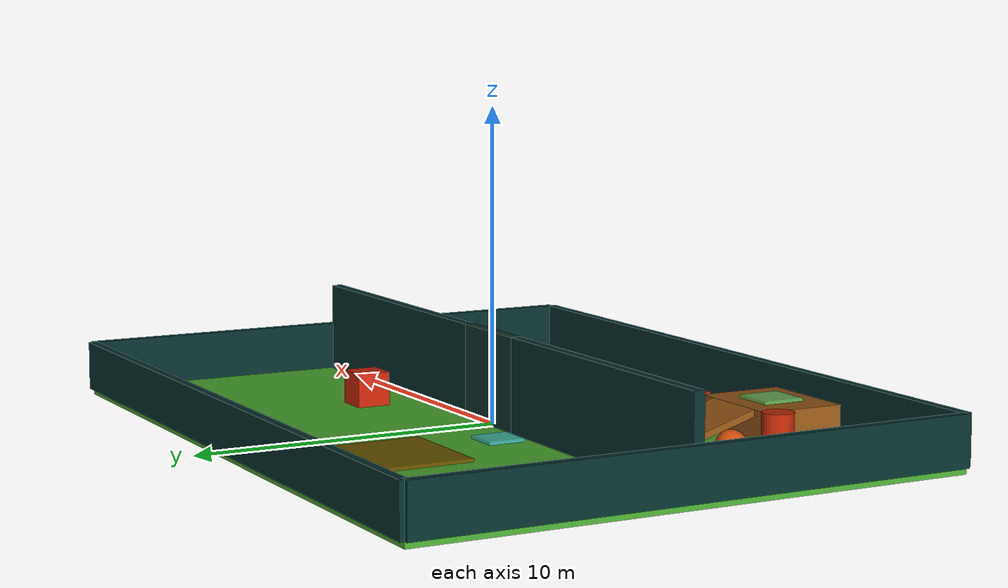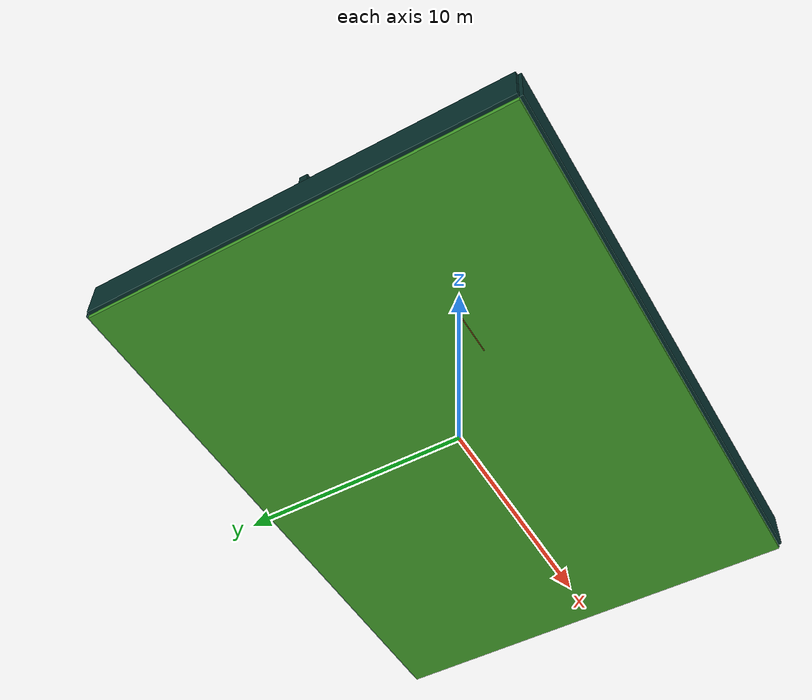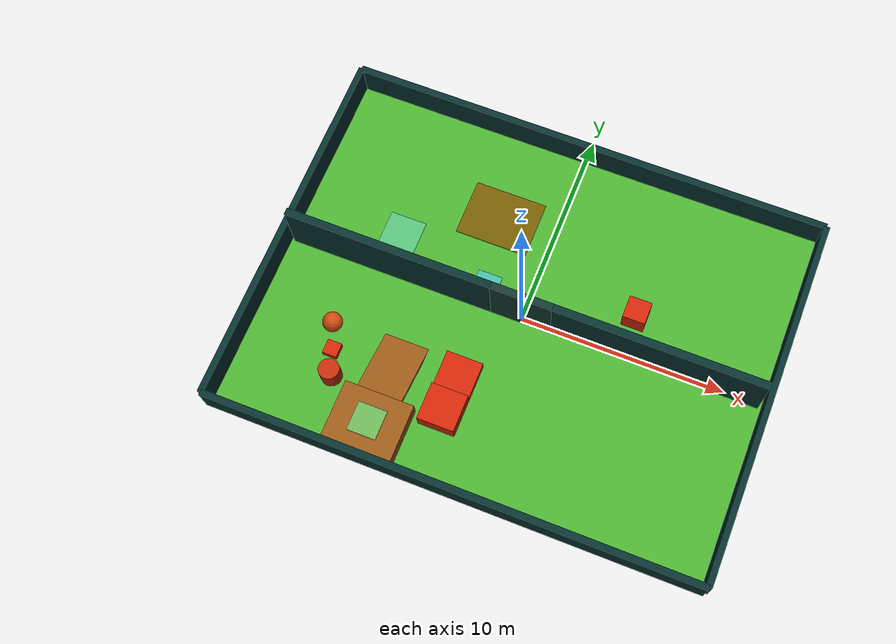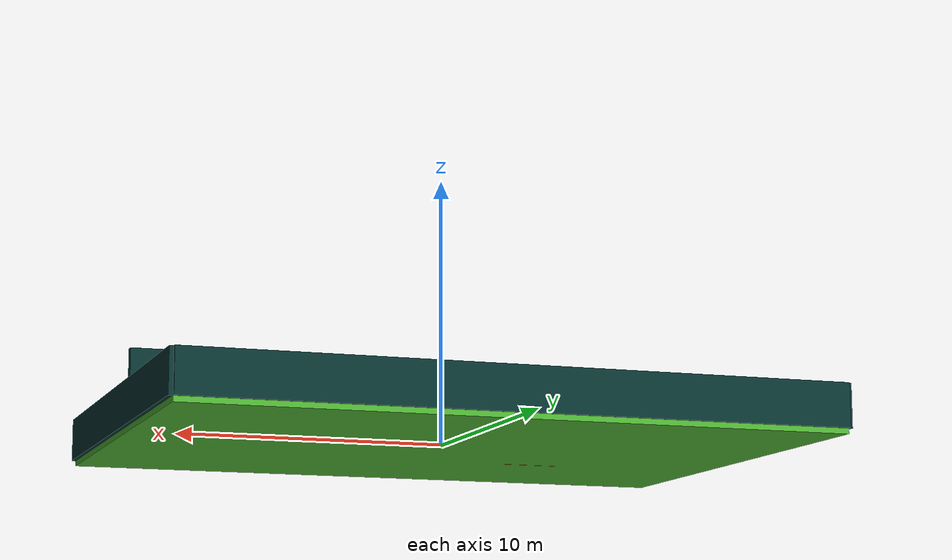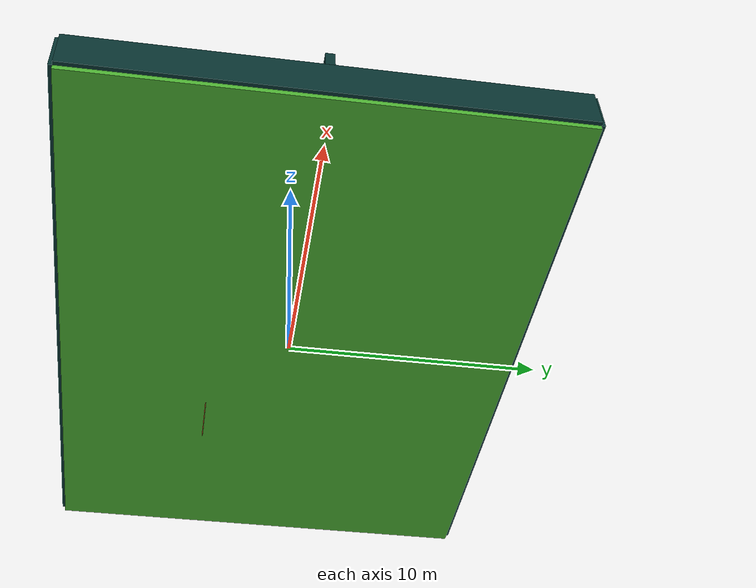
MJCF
<mujoco model="Courtyard_Relay">
  <compiler angle="radian" coordinate="local" autolimits="true" />
  <option timestep="0.01" gravity="0 0 -9.81" integrator="RK4" />
  <visual>
    <global offwidth="1280" offheight="820" />
    <quality shadowsize="4096" offsamples="4" />
    <headlight diffuse="0.45 0.48 0.38" ambient="0.18 0.16 0.12" specular="0.24 0.22 0.18" />
    <rgba haze="0.48 0.67 0.82 1" />
  </visual>
  <asset>
    <texture name="retro_adventure_sky" type="skybox" builtin="gradient" rgb1="0.55 0.78 1" rgb2="0.95 0.98 0.72" width="512" height="512" />
    <texture name="retro_adventure_grass" type="2d" builtin="checker" rgb1="0.62 0.86 0.5" rgb2="0.43 0.73 0.38" width="16" height="16" />
    <texture name="retro_adventure_wall" type="2d" builtin="checker" rgb1="0.2 0.5 0.48" rgb2="0.11 0.32 0.34" width="12" height="12" />
    <texture name="retro_adventure_path" type="2d" builtin="checker" rgb1="0.86 0.68 0.38" rgb2="0.65 0.46 0.24" width="10" height="10" />
    <texture name="retro_adventure_warm" type="2d" builtin="checker" rgb1="0.95 0.5 0.2" rgb2="0.74 0.24 0.12" width="8" height="8" />
    <texture name="retro_adventure_player" type="2d" builtin="checker" rgb1="0.18 0.48 1" rgb2="0.05 0.18 0.68" width="8" height="8" />
    <texture name="retro_adventure_hazard" type="2d" builtin="checker" rgb1="1 0.72 0.05" rgb2="0.04 0.05 0.06" width="16" height="16" />
    <material name="ground" rgba="0.545098 0.839216 0.423529 1" texture="retro_adventure_grass" texrepeat="4 3" texuniform="true" reflectance="0.12" specular="0.18" shininess="0.25" />
    <material name="wall" rgba="0.156863 0.454902 0.435294 1" texture="retro_adventure_wall" texrepeat="4 1" texuniform="true" reflectance="0.08" specular="0.18" shininess="0.2" />
    <material name="platform" rgba="0.776471 0.592157 0.298039 1" texture="retro_adventure_path" texrepeat="2 2" texuniform="true" reflectance="0.1" specular="0.22" shininess="0.35" />
    <material name="ramp" rgba="0.776471 0.592157 0.298039 1" texture="retro_adventure_path" texrepeat="2 1" texuniform="true" reflectance="0.1" specular="0.2" shininess="0.3" />
    <material name="pushable_box" rgba="0.937255 0.392157 0.188235 1" texture="retro_adventure_warm" texrepeat="1 1" texuniform="true" reflectance="0.08" specular="0.28" shininess="0.45" />
    <material name="ball" rgba="0.941176 0.784314 0.290196 1" texture="retro_adventure_warm" texrepeat="1 1" texuniform="true" reflectance="0.1" specular="0.35" shininess="0.5" />
    <material name="cylinder" rgba="0.87451 0.439216 0.188235 1" texture="retro_adventure_warm" texrepeat="1 1" texuniform="true" reflectance="0.08" specular="0.24" shininess="0.35" />
    <material name="agent" rgba="0.176471 0.45098 1 1" texture="retro_adventure_player" texrepeat="1 1" texuniform="true" reflectance="0.1" specular="0.4" shininess="0.6" />
    <material name="goal" rgba="0.341176 0.94902 0.529412 0.6" reflectance="0.03" specular="0.15" shininess="0.25" emission="0.12" />
    <material name="target_region" rgba="0.439216 0.839216 0.909804 0.4" reflectance="0.02" specular="0.16" shininess="0.3" emission="0.08" />
    <material name="hazard" rgba="1 0.819608 0.231373 0.8" texture="retro_adventure_hazard" texrepeat="6 4" texuniform="true" reflectance="0.03" specular="0.18" shininess="0.35" emission="0.1" />
    <material name="floor_switch" rgba="0.286275 0.776471 0.898039 0.666667" reflectance="0.05" specular="0.3" shininess="0.55" emission="0.2" />
    <material name="gate" rgba="0.45098 0.501961 0.435294 1" texture="retro_adventure_wall" texrepeat="2 1" texuniform="true" reflectance="0.08" specular="0.22" shininess="0.3" />
  </asset>
  <worldbody>
    <light name="key_light" pos="-4 -7 10" dir="0.35 0.45 -1" diffuse="1 0.9 0.68" ambient="0.24 0.2 0.15" specular="0.32 0.28 0.18" directional="true" />
    <light name="fill_light" pos="-5 5 5" diffuse="0.38 0.55 0.75" ambient="0.1 0.12 0.14" specular="0.08 0.1 0.12" />
    <light name="rim_light" pos="5 -4 6" diffuse="0.7 0.58 0.35" ambient="0.06 0.05 0.03" specular="0.16 0.14 0.08" />
    <camera name="overview" pos="0 -22.8 9" xyaxes="1 0 0 0 0.367167 0.930155" fovy="45" />
    <camera name="agent" pos="-3.279 2.38 2.75" xyaxes="0.857493 -0.514496 0 0.18162 0.302701 0.935621" fovy="50" />
    <camera name="goal" pos="-1.61 -12.38 3.7" xyaxes="0.857493 0.514496 0 -0.18162 0.302701 0.935621" fovy="50" />
    <geom name="ground" material="ground" type="box" pos="0 0 -0.1" size="12 9 0.1" euler="0 0 0" />
    <geom name="north_boundary" material="wall" type="box" pos="0 9 0.8" size="12 0.15 0.8" euler="0 0 0" />
    <geom name="south_boundary" material="wall" type="box" pos="0 -9 0.8" size="12 0.15 0.8" euler="0 0 0" />
    <geom name="west_boundary" material="wall" type="box" pos="-12 0 0.8" size="0.15 9 0.8" euler="0 0 0" />
    <geom name="east_boundary" material="wall" type="box" pos="12 0 0.8" size="0.15 9 0.8" euler="0 0 0" />
    <body name="blue_robot" pos="-0.279 7.38 0.55" euler="0 0 0">
      <freejoint name="blue_robot_freejoint" />
      <geom name="blue_robot" material="agent" type="cylinder" pos="0 0 0" size="0.35 0.55" mass="1.5" group="5" />
    </body>
    <geom name="charging_goal" material="goal" type="box" pos="-4.61 -7.38 0.95" size="0.7 0.7 0.05" euler="0 0 0" contype="0" conaffinity="0" />
    <geom name="mid_wall_west" material="wall" type="box" pos="-6.6 0 1.5" size="5.1 0.175 1.5" euler="0 0 0" />
    <geom name="mid_wall_east" material="wall" type="box" pos="6.6 0 1.5" size="5.1 0.175 1.5" euler="0 0 0" />
    <body name="center_gate" pos="0 0 1.5" euler="0 0 0" gravcomp="1">
      <joint name="center_gate_slide" type="slide" axis="0 0 1" range="0 1.5" damping="12" />
      <geom name="center_gate" material="gate" type="box" pos="0 0 0" size="1.5 0.175 1.5" mass="8" />
    </body>
    <geom name="gate_switch" material="floor_switch" type="box" pos="-2.2 1 0.05" size="0.6 0.6 0.05" euler="0 0 0" contype="0" conaffinity="0" />
    <geom name="broken_paving_hazard" material="hazard" type="box" pos="-2.8 4.5 0.05" size="1.8 1.4 0.05" euler="0 0 0" contype="0" conaffinity="0" />
    <geom name="goal_platform" material="platform" type="box" pos="-4.61 -7.38 0.45" size="1.7 1.4 0.45" euler="0 0 0" />
    <geom name="goal_ramp" material="ramp" type="box" pos="-4.61 -4.511608 0.344639" size="1.566046 1.1 0.11" xyaxes="0 -0.957826 0.287348 1 0 0" />
    <geom name="supply_target_region" material="target_region" type="box" pos="-7 2 0.05" size="0.9 0.9 0.05" euler="0 0 0" contype="0" conaffinity="0" />
    <body name="supply_crate" pos="5 2 0.55" euler="0 0 0">
      <freejoint name="supply_crate_freejoint" />
      <geom name="supply_crate" material="pushable_box" type="box" pos="0 0 0" size="0.55 0.55 0.55" mass="1" />
    </body>
    <geom name="climb_tower_lower_step" material="pushable_box" type="box" pos="-1.7 -3.75 0.225" size="0.9 0.9 0.225" euler="0 0 0" />
    <geom name="climb_tower_upper_step" material="pushable_box" type="box" pos="-1.7 -5.55 0.45" size="0.9 0.9 0.45" euler="0 0 0" />
    <body name="goal_side_barrel" pos="-7.2 -5.8 0.55" euler="0 0 0">
      <freejoint name="goal_side_barrel_freejoint" />
      <geom name="goal_side_barrel" material="cylinder" type="cylinder" pos="0 0 0" size="0.5 0.55" mass="1" />
    </body>
    <body name="goal_side_yard_ball" pos="-8.14 -3.48 0.48" euler="0 0 0">
      <freejoint name="goal_side_yard_ball_freejoint" />
      <geom name="goal_side_yard_ball" material="ball" type="sphere" pos="0 0 0" size="0.48" mass="1" />
    </body>
    <geom name="barrel_ball_planter" material="pushable_box" type="box" pos="-7.67 -4.64 0.175" size="0.35 0.35 0.175" euler="0 0 0" />
  </worldbody>
  <actuator>
    <position name="center_gate_actuator" joint="center_gate_slide" kp="120" kv="18" ctrlrange="0 1.5" />
  </actuator>
</mujoco>
